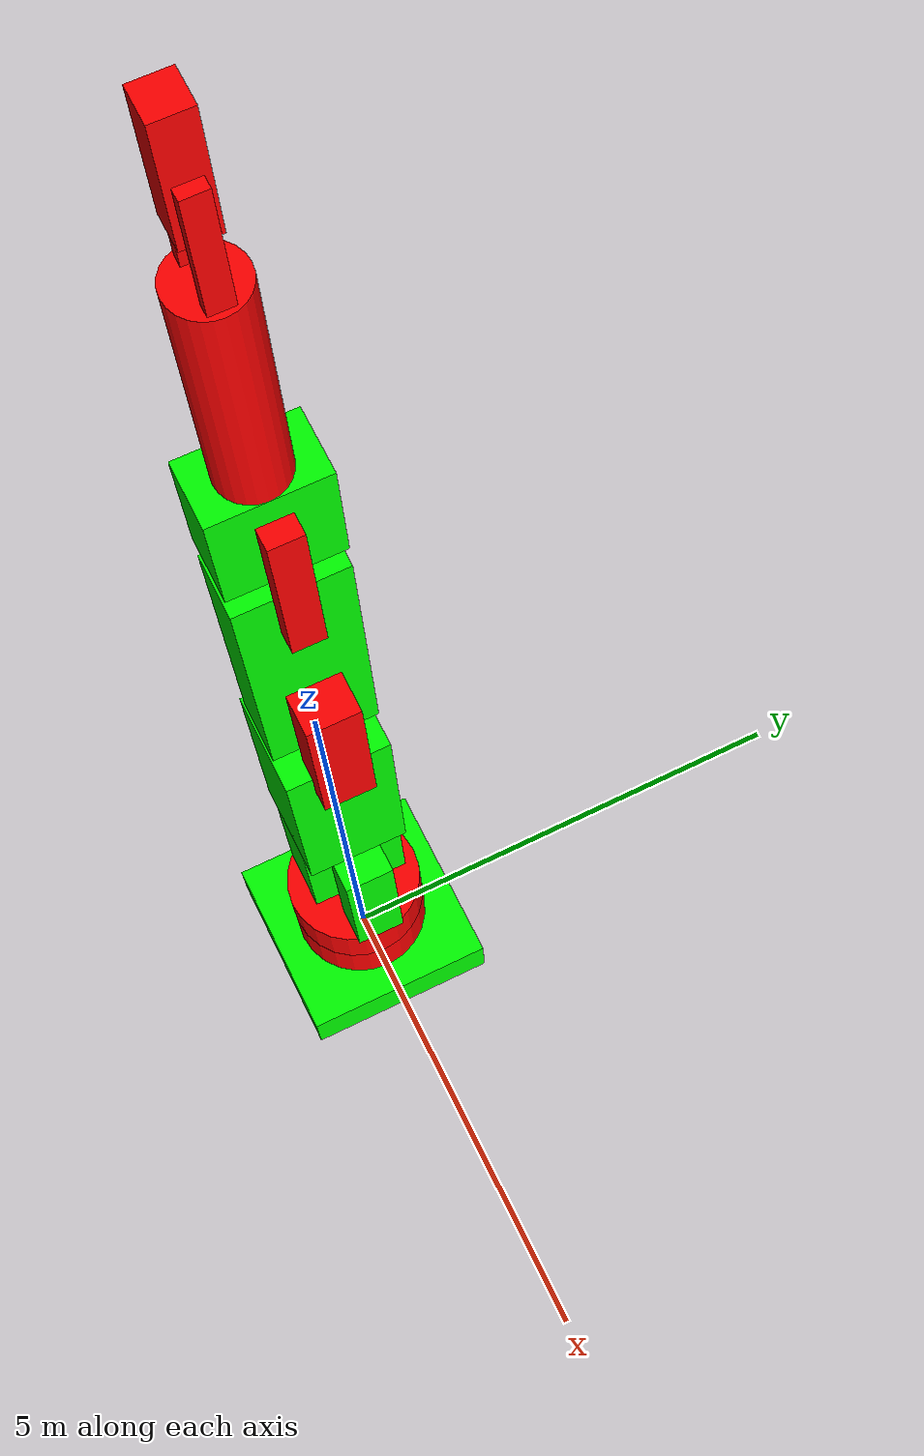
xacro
<?xml version="1.0"?>
<robot xmlns:xacro="http://wiki.ros.org/xacro" name="my_robot">

<!-- materialy -->
  <material name="red">
    <color rgba="1.0 0.0 0.0 1.0"/>
  </material>

  <material name="green">
    <color rgba="0.0 1.0 0.0 1.0"/>
  </material>

  <material name="blue">
    <color rgba="0.0 0.0 1.0 1.0"/>
  </material>

  <!-- czlony -->
  <link name="podstawa1">
    <visual>
      <geometry>
        <box size="2 2 0.5"/>
      </geometry>
      <origin rpy="0 0 0" xyz="0 0 0"/>
      <material name="green">
      </material>
    </visual>

    <collision>
      <geometry>
        <box size="1 1 0.5"/>
      </geometry>
      <origin rpy="0 0 0" xyz="0 0 0"/>
    </collision>

    <innertial>
      <origin xyz="0 0 0" rpy="0 0 0"/>
      <mass value="1"/>
      <inertia ixx="1" ixy="1" ixz="1" iyy="1" iyz="1" izz="1"/>
    </innertial>
  </link>

  <joint name="zlacze_podstawa" type="fixed">
      <parent link="podstawa1"/>
      <child link="podstawa2"/>
    </joint>

  <link name="podstawa2">
    <visual>
      <geometry>
        <cylinder length="0.5" radius="0.7"/>
      </geometry>
      <origin rpy="0 0 0" xyz="0 0 0.5"/>
      <material name="red">
      </material>
    </visual>

    <collision>
      <geometry>
        <cylinder length="1" radius="1"/>
      </geometry>
      <origin rpy="0 0 0" xyz="0 0 0.5"/>
    </collision>

    <innertial>
      <origin xyz="0 0 0" rpy="0 0 0.5"/>
      <mass value="1"/>
      <inertia ixx="1" ixy="1" ixz="1" iyy="1" iyz="1" izz="1"/>
    </innertial>
  </link>

  <joint name="baza_1os" type="revolute">
      <parent link="podstawa2"/>
      <child link="1_os1"/>
      <axis xyz="0 0 1"/>
      <origin rpy="0 0 0" xyz="0 0 1"/>
      <limit effort="1000.0" lower="-1.8" upper="1.8" velocity="1.0"/>
    </joint>

  <link name="1_os1">
    <visual>
      <geometry>
        <cylinder length="0.5" radius="0.7"/>
      </geometry>
      <origin rpy="0 0 0" xyz="0 0 0"/>
      <material name="red">
      </material>
    </visual>

    <collision>
      <geometry>
        <cylinder length="1" radius="1"/>
      </geometry>
      <origin rpy="0 0 0" xyz="0 0 0"/>
    </collision>

    <innertial>
      <origin xyz="0 0 0" rpy="0 0 0"/>
      <mass value="1"/>
      <inertia ixx="1" ixy="1" ixz="1" iyy="1" iyz="1" izz="1"/>
    </innertial>
  </link>

  <joint name="zlacze_1os1" type="fixed">
    <parent link="1_os1"/>
    <child link="1_os2"/>
  </joint>

  <link name="1_os2">
    <visual>
      <geometry>
        <box size="0.4 0.5 1.5"/>
      </geometry>
      <origin rpy="0 0 0" xyz="0.5 0 1"/>
      <material name="green">
      </material>
    </visual>

    <collision>
      <geometry>
        <box size="1 1 0.5"/>
      </geometry>
      <origin rpy="0 0 0" xyz="0 0 0"/>
    </collision>

    <innertial>
      <origin xyz="0 0 0" rpy="0 0 0"/>
      <mass value="1"/>
      <inertia ixx="1" ixy="1" ixz="1" iyy="1" iyz="1" izz="1"/>
    </innertial>
  </link>

  <joint name="zlacze_1os2" type="fixed">
    <parent link="1_os2"/>
    <child link="1_os3"/>
  </joint>

  <link name="1_os3">
    <visual>
      <geometry>
        <box size="0.4 0.5 1.5"/>
      </geometry>
      <origin rpy="0 0 0" xyz="-0.5 0 1"/>
      <material name="green">
      </material>
    </visual>

    <collision>
      <geometry>
        <box size="1 1 0.5"/>
      </geometry>
      <origin rpy="0 0 0" xyz="0 0 0"/>
    </collision>

    <innertial>
      <origin xyz="0 0 0" rpy="0 0 0"/>
      <mass value="1"/>
      <inertia ixx="1" ixy="1" ixz="1" iyy="1" iyz="1" izz="1"/>
    </innertial>
  </link>

  <joint name="1_os-2_os" type="revolute">
      <parent link="1_os1"/>
      <child link="2_os1"/>
      <axis xyz="1 0 0"/>
      <origin rpy="0 0 0" xyz="0 0 1"/>
      <limit effort="1000.0" lower="-1" upper="1" velocity="1.0"/>
    </joint>

  <link name="2_os1">
    <visual>
      <geometry>
        <box size="0.6 1 1.5"/>
      </geometry>
      <origin rpy="0 0 0" xyz="0 0 0.5"/>
      <material name="green">
      </material>
    </visual>

    <collision>
      <geometry>
        <box size="1 1 0.5"/>
      </geometry>
      <origin rpy="0 0 0" xyz="0 0 -0.8"/>
    </collision>

    <innertial>
      <origin xyz="0 0 0" rpy="0 0 0"/>
      <mass value="1"/>
      <inertia ixx="1" ixy="1" ixz="1" iyy="1" iyz="1" izz="1"/>
    </innertial>
  </link>

    <joint name="zlacze_2os2" type="fixed">
      <parent link="2_os1"/>
      <child link="2_os2"/>
    </joint>

    <link name="2_os2">
      <visual>
        <geometry>
          <box size="1 1 2"/>
        </geometry>
        <origin rpy="0 0 0" xyz="0 0 2"/>
        <material name="green">
        </material>
      </visual>

      <collision>
        <geometry>
          <box size="1 1 0.5"/>
        </geometry>
        <origin rpy="0 0 0" xyz="0 0 0"/>
      </collision>

      <innertial>
        <origin xyz="0 0 0" rpy="0 0 0"/>
        <mass value="1"/>
        <inertia ixx="1" ixy="1" ixz="1" iyy="1" iyz="1" izz="1"/>
      </innertial>
    </link>

  <joint name="zlacze_2os3" type="fixed">
    <parent link="2_os2"/>
    <child link="2_os3"/>
  </joint>

  <link name="2_os3">
    <visual>
      <geometry>
        <box size="0.4 0.5 1.5"/>
      </geometry>
      <origin rpy="0 0 0" xyz="0.5 0 3.5"/>
      <material name="red">
      </material>
    </visual>

    <collision>
      <geometry>
        <box size="1 1 0.5"/>
      </geometry>
      <origin rpy="0 0 0" xyz="0 0 0"/>
    </collision>

    <innertial>
      <origin xyz="0 0 0" rpy="0 0 0"/>
      <mass value="1"/>
      <inertia ixx="1" ixy="1" ixz="1" iyy="1" iyz="1" izz="1"/>
    </innertial>
  </link>

  <joint name="zlacze_2os4" type="fixed">
    <parent link="2_os2"/>
    <child link="2_os4"/>
  </joint>

  <link name="2_os4">
    <visual>
      <geometry>
        <box size="0.4 0.5 1.5"/>
      </geometry>
      <origin rpy="0 0 0" xyz="-0.5 0 3.5"/>
      <material name="red">
      </material>
    </visual>

    <collision>
      <geometry>
        <box size="1 1 0.5"/>
      </geometry>
      <origin rpy="0 0 0" xyz="0 0 0"/>
    </collision>

    <innertial>
      <origin xyz="0 0 0" rpy="0 0 0"/>
      <mass value="1"/>
      <inertia ixx="1" ixy="1" ixz="1" iyy="1" iyz="1" izz="1"/>
    </innertial>
  </link>

  <joint name="2_os-3_os" type="revolute">
      <parent link="2_os2"/>
      <child link="3_os1"/>
      <axis xyz="1 0 0"/>
      <origin rpy="0 0 0" xyz="0 0 4"/>
      <limit effort="1000.0" lower="-1" upper="1" velocity="1.0"/>
    </joint>

  <link name="3_os1">
    <visual>
      <geometry>
        <box size="0.6 1 2.5"/>
      </geometry>
      <origin rpy="0 0 0" xyz="0 0 0.5"/>
      <material name="green">
      </material>
    </visual>

    <collision>
      <geometry>
        <box size="1 1 0.5"/>
      </geometry>
      <origin rpy="0 0 0" xyz="0 0 -0.8"/>
    </collision>

    <innertial>
      <origin xyz="0 0 0" rpy="0 0 0"/>
      <mass value="1"/>
      <inertia ixx="1" ixy="1" ixz="1" iyy="1" iyz="1" izz="1"/>
    </innertial>
  </link>

<joint name="zlacze_3os2" type="fixed">
    <parent link="3_os1"/>
    <child link="3_os2"/>
  </joint>

  <link name="3_os2">
    <visual>
      <geometry>
        <box size="0.2 0.3 1.5"/>
      </geometry>
      <origin rpy="0 0 0" xyz="0.4 0 2"/>
      <material name="red">
      </material>
    </visual>

    <collision>
      <geometry>
        <box size="1 1 0.5"/>
      </geometry>
      <origin rpy="0 0 0" xyz="0 0 0"/>
    </collision>

    <innertial>
      <origin xyz="0 0 0" rpy="0 0 0"/>
      <mass value="1"/>
      <inertia ixx="1" ixy="1" ixz="1" iyy="1" iyz="1" izz="1"/>
    </innertial>
  </link>

  <joint name="zlacze_3os3" type="fixed">
    <parent link="3_os2"/>
    <child link="3_os3"/>
  </joint>

  <link name="3_os3">
    <visual>
      <geometry>
        <box size="0.2 0.3 1.5"/>
      </geometry>
      <origin rpy="0 0 0" xyz="-0.4 0 2"/>
      <material name="red">
      </material>
    </visual>

    <collision>
      <geometry>
        <box size="1 1 0.5"/>
      </geometry>
      <origin rpy="0 0 0" xyz="0 0 0"/>
    </collision>

    <innertial>
      <origin xyz="0 0 0" rpy="0 0 0"/>
      <mass value="1"/>
      <inertia ixx="1" ixy="1" ixz="1" iyy="1" iyz="1" izz="1"/>
    </innertial>
  </link>

<joint name="3_os-4_os" type="revolute">
      <parent link="3_os2"/>
      <child link="4_os1"/>
      <axis xyz="1 0 0"/>
      <origin rpy="0 0 0" xyz="0 0 2.5"/>
      <limit effort="1000.0" lower="-1.5" upper="1,5" velocity="1.0"/>
    </joint>

  <link name="4_os1">
    <visual>
      <geometry>
        <box size="0.6 1 1"/>
      </geometry>
      <origin rpy="0 0 0" xyz="0 0 0"/>
      <material name="green">
      </material>
    </visual>

    <collision>
      <geometry>
        <box size="1 1 0.5"/>
      </geometry>
      <origin rpy="0 0 0" xyz="0 0 -0.8"/>
    </collision>

    <innertial>
      <origin xyz="0 0 0" rpy="0 0 0"/>
      <mass value="1"/>
      <inertia ixx="1" ixy="1" ixz="1" iyy="1" iyz="1" izz="1"/>
    </innertial>
  </link>

  <joint name="zlacze_4os2" type="fixed">
    <parent link="4_os1"/>
    <child link="4_os2"/>
  </joint>

  <link name="4_os2">
    <visual>
      <geometry>
        <cylinder length="2" radius="0.3"/>
      </geometry>
      <origin rpy="0 0 0" xyz="0 0 1.5"/>
      <material name="red">
      </material>
    </visual>

    <collision>
      <geometry>
        <cylinder length="1" radius="1"/>
      </geometry>
      <origin rpy="0 0 0" xyz="0 0 0.5"/>
    </collision>

    <innertial>
      <origin xyz="0 0 0" rpy="0 0 0.5"/>
      <mass value="1"/>
      <inertia ixx="1" ixy="1" ixz="1" iyy="1" iyz="1" izz="1"/>
    </innertial>
  </link>

<joint name="4_os-5_os" type="revolute">
      <parent link="4_os2"/>
      <child link="5_os1"/>
      <axis xyz="0 0 1"/>
      <origin rpy="0 0 0" xyz="0 0 1.5"/>
      <limit effort="1000.0" lower="-1.8" upper="1.8" velocity="1.0"/>
    </joint>

<link name="5_os1">
    <visual>
      <geometry>
        <box size="0.1 0.2 1"/>
      </geometry>
      <origin rpy="0 0 0" xyz="0.2 0 1.5"/>
      <material name="red">
      </material>
    </visual>

    <collision>
      <geometry>
        <box size="1 1 0.5"/>
      </geometry>
      <origin rpy="0 0 0" xyz="0 0 0"/>
    </collision>

    <innertial>
      <origin xyz="0 0 0" rpy="0 0 0"/>
      <mass value="1"/>
      <inertia ixx="1" ixy="1" ixz="1" iyy="1" iyz="1" izz="1"/>
    </innertial>
  </link>

<joint name="zlacze_5os2" type="fixed">
    <parent link="5_os1"/>
    <child link="5_os2"/>
  </joint>

  <link name="5_os2">
    <visual>
      <geometry>
        <box size="0.1 0.2 1"/>
      </geometry>
      <origin rpy="0 0 0" xyz="-0.2 0 1.5"/>
      <material name="red">
      </material>
    </visual>

    <collision>
      <geometry>
        <box size="1 1 0.5"/>
      </geometry>
      <origin rpy="0 0 0" xyz="0 0 0"/>
    </collision>

    <innertial>
      <origin xyz="0 0 0" rpy="0 0 0"/>
      <mass value="1"/>
      <inertia ixx="1" ixy="1" ixz="1" iyy="1" iyz="1" izz="1"/>
    </innertial>
  </link>

  <joint name="5_os-6_os" type="revolute">
      <parent link="5_os1"/>
      <child link="6_os1"/>
      <axis xyz="1 0 0"/>
      <origin rpy="0 0 0" xyz="0 0 1.5"/>
      <limit effort="1000.0" lower="-1.5" upper="1.5" velocity="1.0"/>
    </joint>

<link name="6_os1">
    <visual>
      <geometry>
        <box size="0.3 0.3 1"/>
      </geometry>
      <origin rpy="0 0 0" xyz="0 0 0.5"/>
      <material name="red">
      </material>
    </visual>

    <collision>
      <geometry>
        <box size="1 1 0.5"/>
      </geometry>
      <origin rpy="0 0 0" xyz="0 0 0"/>
    </collision>

    <innertial>
      <origin xyz="0 0 0" rpy="0 0 0"/>
      <mass value="1"/>
      <inertia ixx="1" ixy="1" ixz="1" iyy="1" iyz="1" izz="1"/>
    </innertial>
  </link>

</robot>
